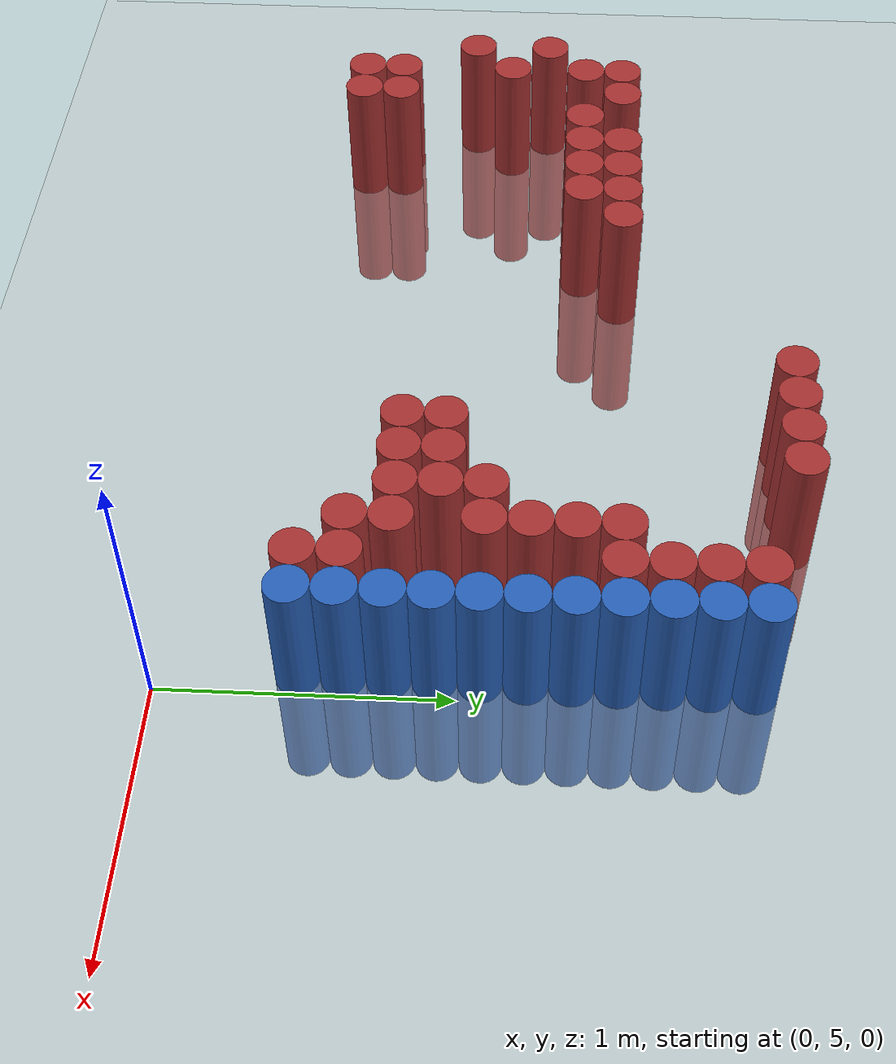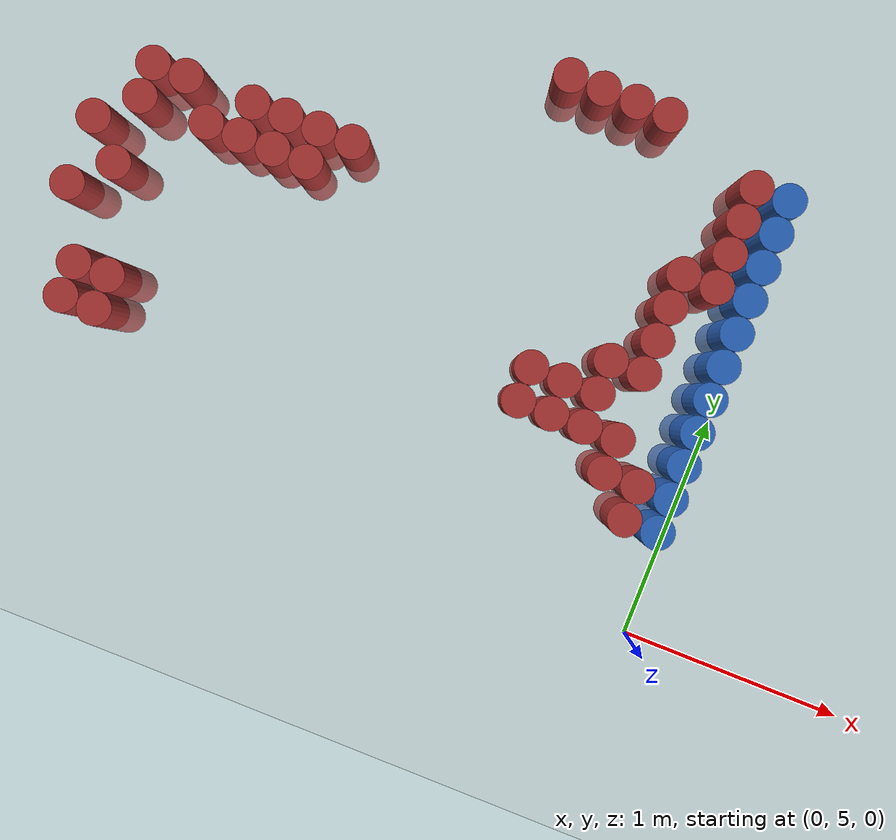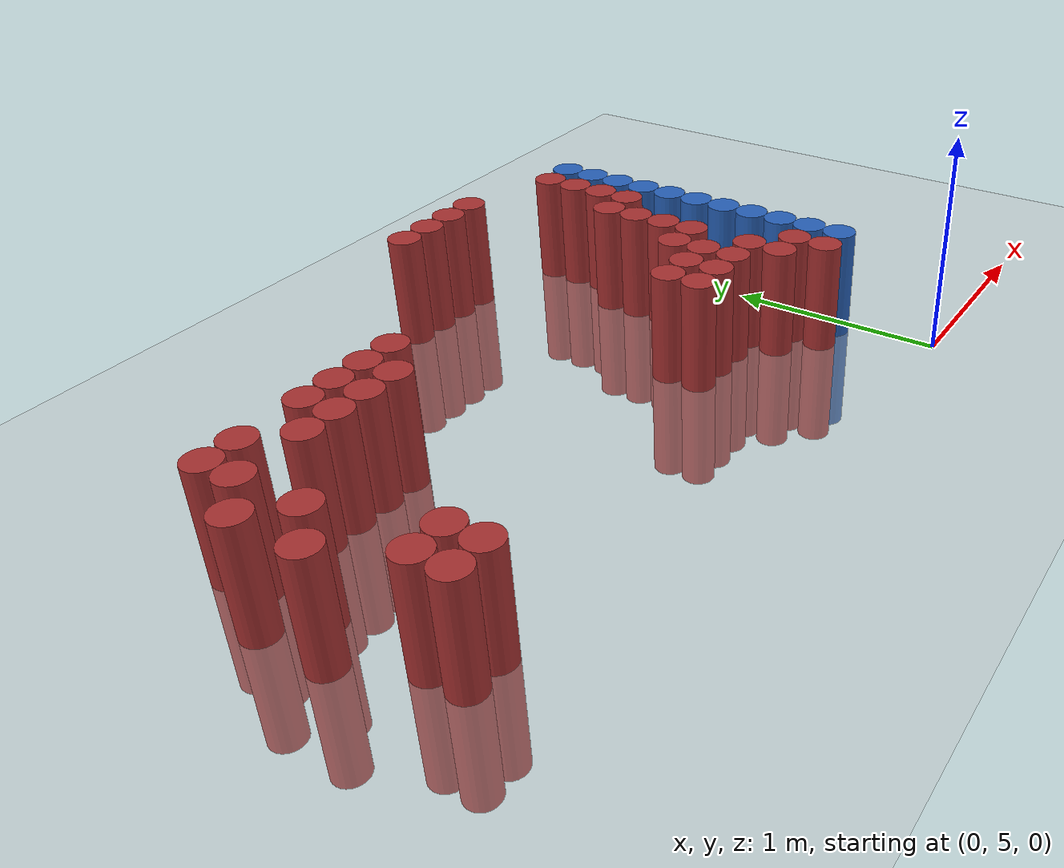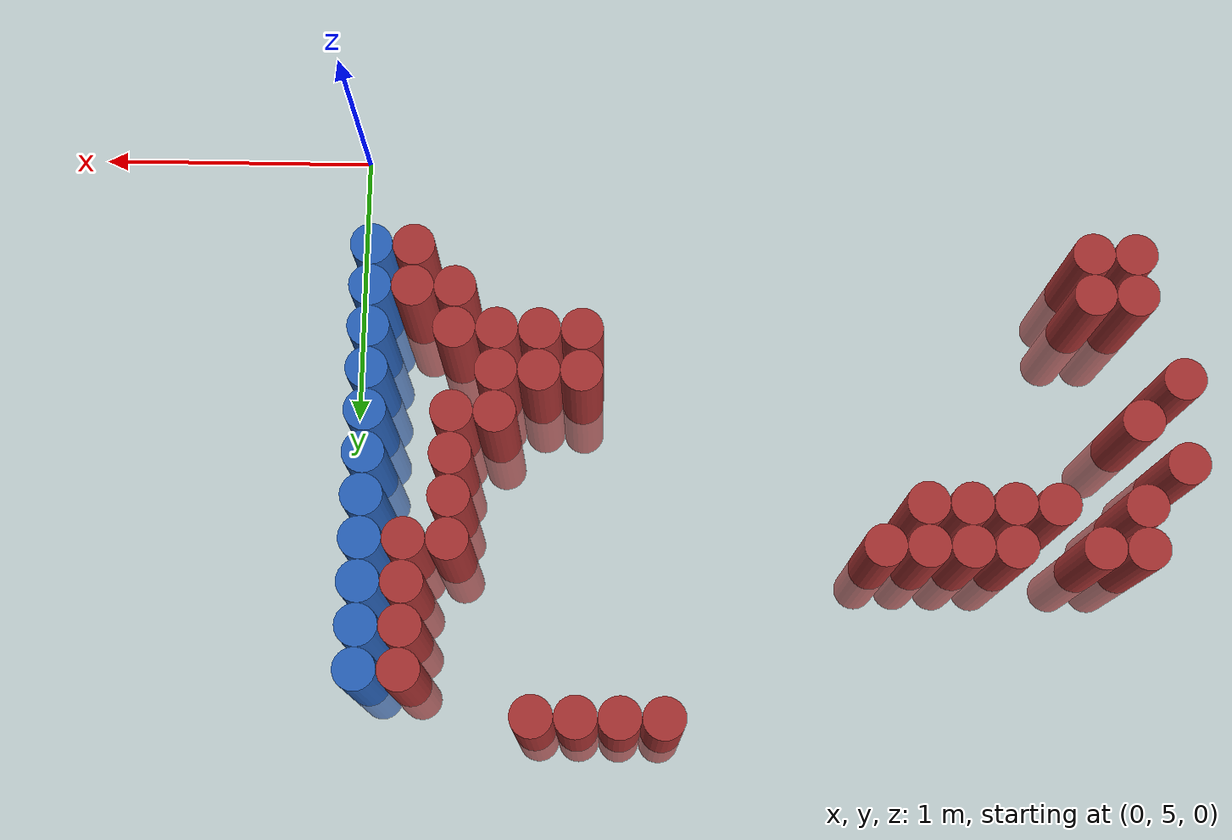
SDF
<sdf version="1.6">
 <world name="default">
  <model name="ground_plane">
   <static>1</static>
   <link name="link">
    <collision name="collision">
     <geometry><plane><normal>0 0 1</normal><size>100 100</size></plane></geometry>
     <surface><friction><ode><mu>100</mu><mu2>50</mu2></ode></friction></surface>
    </collision>
    <visual name="visual">
     <cast_shadows>0</cast_shadows>
     <geometry><plane><normal>0 0 1</normal><size>100 100</size></plane></geometry>
     <material>
      <script><uri>file://media/materials/scripts/gazebo.material</uri><name>Gazebo/Grey</name></script>
     </material>
    </visual>
   </link>
  </model>
  <model name="unit_cylinder_155">
   <static>1</static>
   <pose>-2.925000 5.925000 0.000000 0.000000 0.000000 0.000000</pose>
   <link name="link">
    <inertial>
     <mass>1</mass>
     <inertia><ixx>0.145833</ixx><ixy>0</ixy><ixz>0</ixz><iyy>0.145833</iyy><iyz>0</iyz><izz>0.125</izz></inertia>
    </inertial>
    <collision name="collision">
     <geometry><cylinder><radius>0.075000</radius><length>1</length></cylinder></geometry>
    </collision>
    <visual name="visual">
     <geometry><cylinder><radius>0.075000</radius><length>1</length></cylinder></geometry>
     <material>
      <ambient>0.648000 0.192000 0.192000 1</ambient>
      <diffuse>0.648000 0.192000 0.192000 1</diffuse>
     </material>
     <material>
      <script><name>Gazebo/Grey</name><uri>file://media/materials/scripts/gazebo.material</uri></script>
     </material>
    </visual>
   </link>
  </model>
  <model name="unit_cylinder_156">
   <static>1</static>
   <pose>-2.925000 6.225000 0.000000 0.000000 0.000000 0.000000</pose>
   <link name="link">
    <inertial>
     <mass>1</mass>
     <inertia><ixx>0.145833</ixx><ixy>0</ixy><ixz>0</ixz><iyy>0.145833</iyy><iyz>0</iyz><izz>0.125</izz></inertia>
    </inertial>
    <collision name="collision">
     <geometry><cylinder><radius>0.075000</radius><length>1</length></cylinder></geometry>
    </collision>
    <visual name="visual">
     <geometry><cylinder><radius>0.075000</radius><length>1</length></cylinder></geometry>
     <material>
      <ambient>0.648000 0.192000 0.192000 1</ambient>
      <diffuse>0.648000 0.192000 0.192000 1</diffuse>
     </material>
     <material>
      <script><name>Gazebo/Grey</name><uri>file://media/materials/scripts/gazebo.material</uri></script>
     </material>
    </visual>
   </link>
  </model>
  <model name="unit_cylinder_157">
   <static>1</static>
   <pose>-2.775000 5.475000 0.000000 0.000000 0.000000 0.000000</pose>
   <link name="link">
    <inertial>
     <mass>1</mass>
     <inertia><ixx>0.145833</ixx><ixy>0</ixy><ixz>0</ixz><iyy>0.145833</iyy><iyz>0</iyz><izz>0.125</izz></inertia>
    </inertial>
    <collision name="collision">
     <geometry><cylinder><radius>0.075000</radius><length>1</length></cylinder></geometry>
    </collision>
    <visual name="visual">
     <geometry><cylinder><radius>0.075000</radius><length>1</length></cylinder></geometry>
     <material>
      <ambient>0.648000 0.192000 0.192000 1</ambient>
      <diffuse>0.648000 0.192000 0.192000 1</diffuse>
     </material>
     <material>
      <script><name>Gazebo/Grey</name><uri>file://media/materials/scripts/gazebo.material</uri></script>
     </material>
    </visual>
   </link>
  </model>
  <model name="unit_cylinder_158">
   <static>1</static>
   <pose>-2.775000 5.625000 0.000000 0.000000 0.000000 0.000000</pose>
   <link name="link">
    <inertial>
     <mass>1</mass>
     <inertia><ixx>0.145833</ixx><ixy>0</ixy><ixz>0</ixz><iyy>0.145833</iyy><iyz>0</iyz><izz>0.125</izz></inertia>
    </inertial>
    <collision name="collision">
     <geometry><cylinder><radius>0.075000</radius><length>1</length></cylinder></geometry>
    </collision>
    <visual name="visual">
     <geometry><cylinder><radius>0.075000</radius><length>1</length></cylinder></geometry>
     <material>
      <ambient>0.648000 0.192000 0.192000 1</ambient>
      <diffuse>0.648000 0.192000 0.192000 1</diffuse>
     </material>
     <material>
      <script><name>Gazebo/Grey</name><uri>file://media/materials/scripts/gazebo.material</uri></script>
     </material>
    </visual>
   </link>
  </model>
  <model name="unit_cylinder_159">
   <static>1</static>
   <pose>-2.775000 6.075000 0.000000 0.000000 0.000000 0.000000</pose>
   <link name="link">
    <inertial>
     <mass>1</mass>
     <inertia><ixx>0.145833</ixx><ixy>0</ixy><ixz>0</ixz><iyy>0.145833</iyy><iyz>0</iyz><izz>0.125</izz></inertia>
    </inertial>
    <collision name="collision">
     <geometry><cylinder><radius>0.075000</radius><length>1</length></cylinder></geometry>
    </collision>
    <visual name="visual">
     <geometry><cylinder><radius>0.075000</radius><length>1</length></cylinder></geometry>
     <material>
      <ambient>0.648000 0.192000 0.192000 1</ambient>
      <diffuse>0.648000 0.192000 0.192000 1</diffuse>
     </material>
     <material>
      <script><name>Gazebo/Grey</name><uri>file://media/materials/scripts/gazebo.material</uri></script>
     </material>
    </visual>
   </link>
  </model>
  <model name="unit_cylinder_160">
   <static>1</static>
   <pose>-2.775000 6.375000 0.000000 0.000000 0.000000 0.000000</pose>
   <link name="link">
    <inertial>
     <mass>1</mass>
     <inertia><ixx>0.145833</ixx><ixy>0</ixy><ixz>0</ixz><iyy>0.145833</iyy><iyz>0</iyz><izz>0.125</izz></inertia>
    </inertial>
    <collision name="collision">
     <geometry><cylinder><radius>0.075000</radius><length>1</length></cylinder></geometry>
    </collision>
    <visual name="visual">
     <geometry><cylinder><radius>0.075000</radius><length>1</length></cylinder></geometry>
     <material>
      <ambient>0.648000 0.192000 0.192000 1</ambient>
      <diffuse>0.648000 0.192000 0.192000 1</diffuse>
     </material>
     <material>
      <script><name>Gazebo/Grey</name><uri>file://media/materials/scripts/gazebo.material</uri></script>
     </material>
    </visual>
   </link>
  </model>
  <model name="unit_cylinder_161">
   <static>1</static>
   <pose>-2.775000 6.525000 0.000000 0.000000 0.000000 0.000000</pose>
   <link name="link">
    <inertial>
     <mass>1</mass>
     <inertia><ixx>0.145833</ixx><ixy>0</ixy><ixz>0</ixz><iyy>0.145833</iyy><iyz>0</iyz><izz>0.125</izz></inertia>
    </inertial>
    <collision name="collision">
     <geometry><cylinder><radius>0.075000</radius><length>1</length></cylinder></geometry>
    </collision>
    <visual name="visual">
     <geometry><cylinder><radius>0.075000</radius><length>1</length></cylinder></geometry>
     <material>
      <ambient>0.648000 0.192000 0.192000 1</ambient>
      <diffuse>0.648000 0.192000 0.192000 1</diffuse>
     </material>
     <material>
      <script><name>Gazebo/Grey</name><uri>file://media/materials/scripts/gazebo.material</uri></script>
     </material>
    </visual>
   </link>
  </model>
  <model name="unit_cylinder_162">
   <static>1</static>
   <pose>-2.625000 5.475000 0.000000 0.000000 0.000000 0.000000</pose>
   <link name="link">
    <inertial>
     <mass>1</mass>
     <inertia><ixx>0.145833</ixx><ixy>0</ixy><ixz>0</ixz><iyy>0.145833</iyy><iyz>0</iyz><izz>0.125</izz></inertia>
    </inertial>
    <collision name="collision">
     <geometry><cylinder><radius>0.075000</radius><length>1</length></cylinder></geometry>
    </collision>
    <visual name="visual">
     <geometry><cylinder><radius>0.075000</radius><length>1</length></cylinder></geometry>
     <material>
      <ambient>0.648000 0.192000 0.192000 1</ambient>
      <diffuse>0.648000 0.192000 0.192000 1</diffuse>
     </material>
     <material>
      <script><name>Gazebo/Grey</name><uri>file://media/materials/scripts/gazebo.material</uri></script>
     </material>
    </visual>
   </link>
  </model>
  <model name="unit_cylinder_163">
   <static>1</static>
   <pose>-2.625000 5.625000 0.000000 0.000000 0.000000 0.000000</pose>
   <link name="link">
    <inertial>
     <mass>1</mass>
     <inertia><ixx>0.145833</ixx><ixy>0</ixy><ixz>0</ixz><iyy>0.145833</iyy><iyz>0</iyz><izz>0.125</izz></inertia>
    </inertial>
    <collision name="collision">
     <geometry><cylinder><radius>0.075000</radius><length>1</length></cylinder></geometry>
    </collision>
    <visual name="visual">
     <geometry><cylinder><radius>0.075000</radius><length>1</length></cylinder></geometry>
     <material>
      <ambient>0.648000 0.192000 0.192000 1</ambient>
      <diffuse>0.648000 0.192000 0.192000 1</diffuse>
     </material>
     <material>
      <script><name>Gazebo/Grey</name><uri>file://media/materials/scripts/gazebo.material</uri></script>
     </material>
    </visual>
   </link>
  </model>
  <model name="unit_cylinder_164">
   <static>1</static>
   <pose>-2.625000 6.525000 0.000000 0.000000 0.000000 0.000000</pose>
   <link name="link">
    <inertial>
     <mass>1</mass>
     <inertia><ixx>0.145833</ixx><ixy>0</ixy><ixz>0</ixz><iyy>0.145833</iyy><iyz>0</iyz><izz>0.125</izz></inertia>
    </inertial>
    <collision name="collision">
     <geometry><cylinder><radius>0.075000</radius><length>1</length></cylinder></geometry>
    </collision>
    <visual name="visual">
     <geometry><cylinder><radius>0.075000</radius><length>1</length></cylinder></geometry>
     <material>
      <ambient>0.648000 0.192000 0.192000 1</ambient>
      <diffuse>0.648000 0.192000 0.192000 1</diffuse>
     </material>
     <material>
      <script><name>Gazebo/Grey</name><uri>file://media/materials/scripts/gazebo.material</uri></script>
     </material>
    </visual>
   </link>
  </model>
  <model name="unit_cylinder_167">
   <static>1</static>
   <pose>-2.475000 6.375000 0.000000 0.000000 0.000000 0.000000</pose>
   <link name="link">
    <inertial>
     <mass>1</mass>
     <inertia><ixx>0.145833</ixx><ixy>0</ixy><ixz>0</ixz><iyy>0.145833</iyy><iyz>0</iyz><izz>0.125</izz></inertia>
    </inertial>
    <collision name="collision">
     <geometry><cylinder><radius>0.075000</radius><length>1</length></cylinder></geometry>
    </collision>
    <visual name="visual">
     <geometry><cylinder><radius>0.075000</radius><length>1</length></cylinder></geometry>
     <material>
      <ambient>0.648000 0.192000 0.192000 1</ambient>
      <diffuse>0.648000 0.192000 0.192000 1</diffuse>
     </material>
     <material>
      <script><name>Gazebo/Grey</name><uri>file://media/materials/scripts/gazebo.material</uri></script>
     </material>
    </visual>
   </link>
  </model>
  <model name="unit_cylinder_171">
   <static>1</static>
   <pose>-2.325000 6.375000 0.000000 0.000000 0.000000 0.000000</pose>
   <link name="link">
    <inertial>
     <mass>1</mass>
     <inertia><ixx>0.145833</ixx><ixy>0</ixy><ixz>0</ixz><iyy>0.145833</iyy><iyz>0</iyz><izz>0.125</izz></inertia>
    </inertial>
    <collision name="collision">
     <geometry><cylinder><radius>0.075000</radius><length>1</length></cylinder></geometry>
    </collision>
    <visual name="visual">
     <geometry><cylinder><radius>0.075000</radius><length>1</length></cylinder></geometry>
     <material>
      <ambient>0.648000 0.192000 0.192000 1</ambient>
      <diffuse>0.648000 0.192000 0.192000 1</diffuse>
     </material>
     <material>
      <script><name>Gazebo/Grey</name><uri>file://media/materials/scripts/gazebo.material</uri></script>
     </material>
    </visual>
   </link>
  </model>
  <model name="unit_cylinder_172">
   <static>1</static>
   <pose>-2.325000 6.525000 0.000000 0.000000 0.000000 0.000000</pose>
   <link name="link">
    <inertial>
     <mass>1</mass>
     <inertia><ixx>0.145833</ixx><ixy>0</ixy><ixz>0</ixz><iyy>0.145833</iyy><iyz>0</iyz><izz>0.125</izz></inertia>
    </inertial>
    <collision name="collision">
     <geometry><cylinder><radius>0.075000</radius><length>1</length></cylinder></geometry>
    </collision>
    <visual name="visual">
     <geometry><cylinder><radius>0.075000</radius><length>1</length></cylinder></geometry>
     <material>
      <ambient>0.648000 0.192000 0.192000 1</ambient>
      <diffuse>0.648000 0.192000 0.192000 1</diffuse>
     </material>
     <material>
      <script><name>Gazebo/Grey</name><uri>file://media/materials/scripts/gazebo.material</uri></script>
     </material>
    </visual>
   </link>
  </model>
  <model name="unit_cylinder_174">
   <static>1</static>
   <pose>-2.175000 6.375000 0.000000 0.000000 0.000000 0.000000</pose>
   <link name="link">
    <inertial>
     <mass>1</mass>
     <inertia><ixx>0.145833</ixx><ixy>0</ixy><ixz>0</ixz><iyy>0.145833</iyy><iyz>0</iyz><izz>0.125</izz></inertia>
    </inertial>
    <collision name="collision">
     <geometry><cylinder><radius>0.075000</radius><length>1</length></cylinder></geometry>
    </collision>
    <visual name="visual">
     <geometry><cylinder><radius>0.075000</radius><length>1</length></cylinder></geometry>
     <material>
      <ambient>0.648000 0.192000 0.192000 1</ambient>
      <diffuse>0.648000 0.192000 0.192000 1</diffuse>
     </material>
     <material>
      <script><name>Gazebo/Grey</name><uri>file://media/materials/scripts/gazebo.material</uri></script>
     </material>
    </visual>
   </link>
  </model>
  <model name="unit_cylinder_175">
   <static>1</static>
   <pose>-2.175000 6.525000 0.000000 0.000000 0.000000 0.000000</pose>
   <link name="link">
    <inertial>
     <mass>1</mass>
     <inertia><ixx>0.145833</ixx><ixy>0</ixy><ixz>0</ixz><iyy>0.145833</iyy><iyz>0</iyz><izz>0.125</izz></inertia>
    </inertial>
    <collision name="collision">
     <geometry><cylinder><radius>0.075000</radius><length>1</length></cylinder></geometry>
    </collision>
    <visual name="visual">
     <geometry><cylinder><radius>0.075000</radius><length>1</length></cylinder></geometry>
     <material>
      <ambient>0.648000 0.192000 0.192000 1</ambient>
      <diffuse>0.648000 0.192000 0.192000 1</diffuse>
     </material>
     <material>
      <script><name>Gazebo/Grey</name><uri>file://media/materials/scripts/gazebo.material</uri></script>
     </material>
    </visual>
   </link>
  </model>
  <model name="unit_cylinder_176">
   <static>1</static>
   <pose>-2.025000 6.375000 0.000000 0.000000 0.000000 0.000000</pose>
   <link name="link">
    <inertial>
     <mass>1</mass>
     <inertia><ixx>0.145833</ixx><ixy>0</ixy><ixz>0</ixz><iyy>0.145833</iyy><iyz>0</iyz><izz>0.125</izz></inertia>
    </inertial>
    <collision name="collision">
     <geometry><cylinder><radius>0.075000</radius><length>1</length></cylinder></geometry>
    </collision>
    <visual name="visual">
     <geometry><cylinder><radius>0.075000</radius><length>1</length></cylinder></geometry>
     <material>
      <ambient>0.648000 0.192000 0.192000 1</ambient>
      <diffuse>0.648000 0.192000 0.192000 1</diffuse>
     </material>
     <material>
      <script><name>Gazebo/Grey</name><uri>file://media/materials/scripts/gazebo.material</uri></script>
     </material>
    </visual>
   </link>
  </model>
  <model name="unit_cylinder_177">
   <static>1</static>
   <pose>-2.025000 6.525000 0.000000 0.000000 0.000000 0.000000</pose>
   <link name="link">
    <inertial>
     <mass>1</mass>
     <inertia><ixx>0.145833</ixx><ixy>0</ixy><ixz>0</ixz><iyy>0.145833</iyy><iyz>0</iyz><izz>0.125</izz></inertia>
    </inertial>
    <collision name="collision">
     <geometry><cylinder><radius>0.075000</radius><length>1</length></cylinder></geometry>
    </collision>
    <visual name="visual">
     <geometry><cylinder><radius>0.075000</radius><length>1</length></cylinder></geometry>
     <material>
      <ambient>0.648000 0.192000 0.192000 1</ambient>
      <diffuse>0.648000 0.192000 0.192000 1</diffuse>
     </material>
     <material>
      <script><name>Gazebo/Grey</name><uri>file://media/materials/scripts/gazebo.material</uri></script>
     </material>
    </visual>
   </link>
  </model>
  <model name="unit_cylinder_178">
   <static>1</static>
   <pose>-1.875000 6.525000 0.000000 0.000000 0.000000 0.000000</pose>
   <link name="link">
    <inertial>
     <mass>1</mass>
     <inertia><ixx>0.145833</ixx><ixy>0</ixy><ixz>0</ixz><iyy>0.145833</iyy><iyz>0</iyz><izz>0.125</izz></inertia>
    </inertial>
    <collision name="collision">
     <geometry><cylinder><radius>0.075000</radius><length>1</length></cylinder></geometry>
    </collision>
    <visual name="visual">
     <geometry><cylinder><radius>0.075000</radius><length>1</length></cylinder></geometry>
     <material>
      <ambient>0.648000 0.192000 0.192000 1</ambient>
      <diffuse>0.648000 0.192000 0.192000 1</diffuse>
     </material>
     <material>
      <script><name>Gazebo/Grey</name><uri>file://media/materials/scripts/gazebo.material</uri></script>
     </material>
    </visual>
   </link>
  </model>
  <model name="unit_cylinder_193">
   <static>1</static>
   <pose>-1.125000 7.125000 0.000000 0.000000 0.000000 0.000000</pose>
   <link name="link">
    <inertial>
     <mass>1</mass>
     <inertia><ixx>0.145833</ixx><ixy>0</ixy><ixz>0</ixz><iyy>0.145833</iyy><iyz>0</iyz><izz>0.125</izz></inertia>
    </inertial>
    <collision name="collision">
     <geometry><cylinder><radius>0.075000</radius><length>1</length></cylinder></geometry>
    </collision>
    <visual name="visual">
     <geometry><cylinder><radius>0.075000</radius><length>1</length></cylinder></geometry>
     <material>
      <ambient>0.648000 0.192000 0.192000 1</ambient>
      <diffuse>0.648000 0.192000 0.192000 1</diffuse>
     </material>
     <material>
      <script><name>Gazebo/Grey</name><uri>file://media/materials/scripts/gazebo.material</uri></script>
     </material>
    </visual>
   </link>
  </model>
  <model name="unit_cylinder_197">
   <static>1</static>
   <pose>-0.975000 7.125000 0.000000 0.000000 0.000000 0.000000</pose>
   <link name="link">
    <inertial>
     <mass>1</mass>
     <inertia><ixx>0.145833</ixx><ixy>0</ixy><ixz>0</ixz><iyy>0.145833</iyy><iyz>0</iyz><izz>0.125</izz></inertia>
    </inertial>
    <collision name="collision">
     <geometry><cylinder><radius>0.075000</radius><length>1</length></cylinder></geometry>
    </collision>
    <visual name="visual">
     <geometry><cylinder><radius>0.075000</radius><length>1</length></cylinder></geometry>
     <material>
      <ambient>0.648000 0.192000 0.192000 1</ambient>
      <diffuse>0.648000 0.192000 0.192000 1</diffuse>
     </material>
     <material>
      <script><name>Gazebo/Grey</name><uri>file://media/materials/scripts/gazebo.material</uri></script>
     </material>
    </visual>
   </link>
  </model>
  <model name="unit_cylinder_200">
   <static>1</static>
   <pose>-0.825000 5.775000 0.000000 0.000000 0.000000 0.000000</pose>
   <link name="link">
    <inertial>
     <mass>1</mass>
     <inertia><ixx>0.145833</ixx><ixy>0</ixy><ixz>0</ixz><iyy>0.145833</iyy><iyz>0</iyz><izz>0.125</izz></inertia>
    </inertial>
    <collision name="collision">
     <geometry><cylinder><radius>0.075000</radius><length>1</length></cylinder></geometry>
    </collision>
    <visual name="visual">
     <geometry><cylinder><radius>0.075000</radius><length>1</length></cylinder></geometry>
     <material>
      <ambient>0.648000 0.192000 0.192000 1</ambient>
      <diffuse>0.648000 0.192000 0.192000 1</diffuse>
     </material>
     <material>
      <script><name>Gazebo/Grey</name><uri>file://media/materials/scripts/gazebo.material</uri></script>
     </material>
    </visual>
   </link>
  </model>
  <model name="unit_cylinder_201">
   <static>1</static>
   <pose>-0.825000 5.925000 0.000000 0.000000 0.000000 0.000000</pose>
   <link name="link">
    <inertial>
     <mass>1</mass>
     <inertia><ixx>0.145833</ixx><ixy>0</ixy><ixz>0</ixz><iyy>0.145833</iyy><iyz>0</iyz><izz>0.125</izz></inertia>
    </inertial>
    <collision name="collision">
     <geometry><cylinder><radius>0.075000</radius><length>1</length></cylinder></geometry>
    </collision>
    <visual name="visual">
     <geometry><cylinder><radius>0.075000</radius><length>1</length></cylinder></geometry>
     <material>
      <ambient>0.648000 0.192000 0.192000 1</ambient>
      <diffuse>0.648000 0.192000 0.192000 1</diffuse>
     </material>
     <material>
      <script><name>Gazebo/Grey</name><uri>file://media/materials/scripts/gazebo.material</uri></script>
     </material>
    </visual>
   </link>
  </model>
  <model name="unit_cylinder_202">
   <static>1</static>
   <pose>-0.825000 7.125000 0.000000 0.000000 0.000000 0.000000</pose>
   <link name="link">
    <inertial>
     <mass>1</mass>
     <inertia><ixx>0.145833</ixx><ixy>0</ixy><ixz>0</ixz><iyy>0.145833</iyy><iyz>0</iyz><izz>0.125</izz></inertia>
    </inertial>
    <collision name="collision">
     <geometry><cylinder><radius>0.075000</radius><length>1</length></cylinder></geometry>
    </collision>
    <visual name="visual">
     <geometry><cylinder><radius>0.075000</radius><length>1</length></cylinder></geometry>
     <material>
      <ambient>0.648000 0.192000 0.192000 1</ambient>
      <diffuse>0.648000 0.192000 0.192000 1</diffuse>
     </material>
     <material>
      <script><name>Gazebo/Grey</name><uri>file://media/materials/scripts/gazebo.material</uri></script>
     </material>
    </visual>
   </link>
  </model>
  <model name="unit_cylinder_206">
   <static>1</static>
   <pose>-0.675000 5.775000 0.000000 0.000000 0.000000 0.000000</pose>
   <link name="link">
    <inertial>
     <mass>1</mass>
     <inertia><ixx>0.145833</ixx><ixy>0</ixy><ixz>0</ixz><iyy>0.145833</iyy><iyz>0</iyz><izz>0.125</izz></inertia>
    </inertial>
    <collision name="collision">
     <geometry><cylinder><radius>0.075000</radius><length>1</length></cylinder></geometry>
    </collision>
    <visual name="visual">
     <geometry><cylinder><radius>0.075000</radius><length>1</length></cylinder></geometry>
     <material>
      <ambient>0.648000 0.192000 0.192000 1</ambient>
      <diffuse>0.648000 0.192000 0.192000 1</diffuse>
     </material>
     <material>
      <script><name>Gazebo/Grey</name><uri>file://media/materials/scripts/gazebo.material</uri></script>
     </material>
    </visual>
   </link>
  </model>
  <model name="unit_cylinder_207">
   <static>1</static>
   <pose>-0.675000 5.925000 0.000000 0.000000 0.000000 0.000000</pose>
   <link name="link">
    <inertial>
     <mass>1</mass>
     <inertia><ixx>0.145833</ixx><ixy>0</ixy><ixz>0</ixz><iyy>0.145833</iyy><iyz>0</iyz><izz>0.125</izz></inertia>
    </inertial>
    <collision name="collision">
     <geometry><cylinder><radius>0.075000</radius><length>1</length></cylinder></geometry>
    </collision>
    <visual name="visual">
     <geometry><cylinder><radius>0.075000</radius><length>1</length></cylinder></geometry>
     <material>
      <ambient>0.648000 0.192000 0.192000 1</ambient>
      <diffuse>0.648000 0.192000 0.192000 1</diffuse>
     </material>
     <material>
      <script><name>Gazebo/Grey</name><uri>file://media/materials/scripts/gazebo.material</uri></script>
     </material>
    </visual>
   </link>
  </model>
  <model name="unit_cylinder_208">
   <static>1</static>
   <pose>-0.675000 7.125000 0.000000 0.000000 0.000000 0.000000</pose>
   <link name="link">
    <inertial>
     <mass>1</mass>
     <inertia><ixx>0.145833</ixx><ixy>0</ixy><ixz>0</ixz><iyy>0.145833</iyy><iyz>0</iyz><izz>0.125</izz></inertia>
    </inertial>
    <collision name="collision">
     <geometry><cylinder><radius>0.075000</radius><length>1</length></cylinder></geometry>
    </collision>
    <visual name="visual">
     <geometry><cylinder><radius>0.075000</radius><length>1</length></cylinder></geometry>
     <material>
      <ambient>0.648000 0.192000 0.192000 1</ambient>
      <diffuse>0.648000 0.192000 0.192000 1</diffuse>
     </material>
     <material>
      <script><name>Gazebo/Grey</name><uri>file://media/materials/scripts/gazebo.material</uri></script>
     </material>
    </visual>
   </link>
  </model>
  <model name="unit_cylinder_211">
   <static>1</static>
   <pose>-0.525000 5.775000 0.000000 0.000000 0.000000 0.000000</pose>
   <link name="link">
    <inertial>
     <mass>1</mass>
     <inertia><ixx>0.145833</ixx><ixy>0</ixy><ixz>0</ixz><iyy>0.145833</iyy><iyz>0</iyz><izz>0.125</izz></inertia>
    </inertial>
    <collision name="collision">
     <geometry><cylinder><radius>0.075000</radius><length>1</length></cylinder></geometry>
    </collision>
    <visual name="visual">
     <geometry><cylinder><radius>0.075000</radius><length>1</length></cylinder></geometry>
     <material>
      <ambient>0.648000 0.192000 0.192000 1</ambient>
      <diffuse>0.648000 0.192000 0.192000 1</diffuse>
     </material>
     <material>
      <script><name>Gazebo/Grey</name><uri>file://media/materials/scripts/gazebo.material</uri></script>
     </material>
    </visual>
   </link>
  </model>
  <model name="unit_cylinder_212">
   <static>1</static>
   <pose>-0.525000 5.925000 0.000000 0.000000 0.000000 0.000000</pose>
   <link name="link">
    <inertial>
     <mass>1</mass>
     <inertia><ixx>0.145833</ixx><ixy>0</ixy><ixz>0</ixz><iyy>0.145833</iyy><iyz>0</iyz><izz>0.125</izz></inertia>
    </inertial>
    <collision name="collision">
     <geometry><cylinder><radius>0.075000</radius><length>1</length></cylinder></geometry>
    </collision>
    <visual name="visual">
     <geometry><cylinder><radius>0.075000</radius><length>1</length></cylinder></geometry>
     <material>
      <ambient>0.648000 0.192000 0.192000 1</ambient>
      <diffuse>0.648000 0.192000 0.192000 1</diffuse>
     </material>
     <material>
      <script><name>Gazebo/Grey</name><uri>file://media/materials/scripts/gazebo.material</uri></script>
     </material>
    </visual>
   </link>
  </model>
  <model name="unit_cylinder_213">
   <static>1</static>
   <pose>-0.525000 6.075000 0.000000 0.000000 0.000000 0.000000</pose>
   <link name="link">
    <inertial>
     <mass>1</mass>
     <inertia><ixx>0.145833</ixx><ixy>0</ixy><ixz>0</ixz><iyy>0.145833</iyy><iyz>0</iyz><izz>0.125</izz></inertia>
    </inertial>
    <collision name="collision">
     <geometry><cylinder><radius>0.075000</radius><length>1</length></cylinder></geometry>
    </collision>
    <visual name="visual">
     <geometry><cylinder><radius>0.075000</radius><length>1</length></cylinder></geometry>
     <material>
      <ambient>0.648000 0.192000 0.192000 1</ambient>
      <diffuse>0.648000 0.192000 0.192000 1</diffuse>
     </material>
     <material>
      <script><name>Gazebo/Grey</name><uri>file://media/materials/scripts/gazebo.material</uri></script>
     </material>
    </visual>
   </link>
  </model>
  <model name="unit_cylinder_217">
   <static>1</static>
   <pose>-0.375000 5.625000 0.000000 0.000000 0.000000 0.000000</pose>
   <link name="link">
    <inertial>
     <mass>1</mass>
     <inertia><ixx>0.145833</ixx><ixy>0</ixy><ixz>0</ixz><iyy>0.145833</iyy><iyz>0</iyz><izz>0.125</izz></inertia>
    </inertial>
    <collision name="collision">
     <geometry><cylinder><radius>0.075000</radius><length>1</length></cylinder></geometry>
    </collision>
    <visual name="visual">
     <geometry><cylinder><radius>0.075000</radius><length>1</length></cylinder></geometry>
     <material>
      <ambient>0.648000 0.192000 0.192000 1</ambient>
      <diffuse>0.648000 0.192000 0.192000 1</diffuse>
     </material>
     <material>
      <script><name>Gazebo/Grey</name><uri>file://media/materials/scripts/gazebo.material</uri></script>
     </material>
    </visual>
   </link>
  </model>
  <model name="unit_cylinder_218">
   <static>1</static>
   <pose>-0.375000 5.775000 0.000000 0.000000 0.000000 0.000000</pose>
   <link name="link">
    <inertial>
     <mass>1</mass>
     <inertia><ixx>0.145833</ixx><ixy>0</ixy><ixz>0</ixz><iyy>0.145833</iyy><iyz>0</iyz><izz>0.125</izz></inertia>
    </inertial>
    <collision name="collision">
     <geometry><cylinder><radius>0.075000</radius><length>1</length></cylinder></geometry>
    </collision>
    <visual name="visual">
     <geometry><cylinder><radius>0.075000</radius><length>1</length></cylinder></geometry>
     <material>
      <ambient>0.648000 0.192000 0.192000 1</ambient>
      <diffuse>0.648000 0.192000 0.192000 1</diffuse>
     </material>
     <material>
      <script><name>Gazebo/Grey</name><uri>file://media/materials/scripts/gazebo.material</uri></script>
     </material>
    </visual>
   </link>
  </model>
  <model name="unit_cylinder_219">
   <static>1</static>
   <pose>-0.375000 6.075000 0.000000 0.000000 0.000000 0.000000</pose>
   <link name="link">
    <inertial>
     <mass>1</mass>
     <inertia><ixx>0.145833</ixx><ixy>0</ixy><ixz>0</ixz><iyy>0.145833</iyy><iyz>0</iyz><izz>0.125</izz></inertia>
    </inertial>
    <collision name="collision">
     <geometry><cylinder><radius>0.075000</radius><length>1</length></cylinder></geometry>
    </collision>
    <visual name="visual">
     <geometry><cylinder><radius>0.075000</radius><length>1</length></cylinder></geometry>
     <material>
      <ambient>0.648000 0.192000 0.192000 1</ambient>
      <diffuse>0.648000 0.192000 0.192000 1</diffuse>
     </material>
     <material>
      <script><name>Gazebo/Grey</name><uri>file://media/materials/scripts/gazebo.material</uri></script>
     </material>
    </visual>
   </link>
  </model>
  <model name="unit_cylinder_220">
   <static>1</static>
   <pose>-0.375000 6.225000 0.000000 0.000000 0.000000 0.000000</pose>
   <link name="link">
    <inertial>
     <mass>1</mass>
     <inertia><ixx>0.145833</ixx><ixy>0</ixy><ixz>0</ixz><iyy>0.145833</iyy><iyz>0</iyz><izz>0.125</izz></inertia>
    </inertial>
    <collision name="collision">
     <geometry><cylinder><radius>0.075000</radius><length>1</length></cylinder></geometry>
    </collision>
    <visual name="visual">
     <geometry><cylinder><radius>0.075000</radius><length>1</length></cylinder></geometry>
     <material>
      <ambient>0.648000 0.192000 0.192000 1</ambient>
      <diffuse>0.648000 0.192000 0.192000 1</diffuse>
     </material>
     <material>
      <script><name>Gazebo/Grey</name><uri>file://media/materials/scripts/gazebo.material</uri></script>
     </material>
    </visual>
   </link>
  </model>
  <model name="unit_cylinder_221">
   <static>1</static>
   <pose>-0.375000 6.375000 0.000000 0.000000 0.000000 0.000000</pose>
   <link name="link">
    <inertial>
     <mass>1</mass>
     <inertia><ixx>0.145833</ixx><ixy>0</ixy><ixz>0</ixz><iyy>0.145833</iyy><iyz>0</iyz><izz>0.125</izz></inertia>
    </inertial>
    <collision name="collision">
     <geometry><cylinder><radius>0.075000</radius><length>1</length></cylinder></geometry>
    </collision>
    <visual name="visual">
     <geometry><cylinder><radius>0.075000</radius><length>1</length></cylinder></geometry>
     <material>
      <ambient>0.648000 0.192000 0.192000 1</ambient>
      <diffuse>0.648000 0.192000 0.192000 1</diffuse>
     </material>
     <material>
      <script><name>Gazebo/Grey</name><uri>file://media/materials/scripts/gazebo.material</uri></script>
     </material>
    </visual>
   </link>
  </model>
  <model name="unit_cylinder_222">
   <static>1</static>
   <pose>-0.375000 6.525000 0.000000 0.000000 0.000000 0.000000</pose>
   <link name="link">
    <inertial>
     <mass>1</mass>
     <inertia><ixx>0.145833</ixx><ixy>0</ixy><ixz>0</ixz><iyy>0.145833</iyy><iyz>0</iyz><izz>0.125</izz></inertia>
    </inertial>
    <collision name="collision">
     <geometry><cylinder><radius>0.075000</radius><length>1</length></cylinder></geometry>
    </collision>
    <visual name="visual">
     <geometry><cylinder><radius>0.075000</radius><length>1</length></cylinder></geometry>
     <material>
      <ambient>0.648000 0.192000 0.192000 1</ambient>
      <diffuse>0.648000 0.192000 0.192000 1</diffuse>
     </material>
     <material>
      <script><name>Gazebo/Grey</name><uri>file://media/materials/scripts/gazebo.material</uri></script>
     </material>
    </visual>
   </link>
  </model>
  <model name="unit_cylinder_224">
   <static>1</static>
   <pose>-0.225000 5.475000 0.000000 0.000000 0.000000 0.000000</pose>
   <link name="link">
    <inertial>
     <mass>1</mass>
     <inertia><ixx>0.145833</ixx><ixy>0</ixy><ixz>0</ixz><iyy>0.145833</iyy><iyz>0</iyz><izz>0.125</izz></inertia>
    </inertial>
    <collision name="collision">
     <geometry><cylinder><radius>0.075000</radius><length>1</length></cylinder></geometry>
    </collision>
    <visual name="visual">
     <geometry><cylinder><radius>0.075000</radius><length>1</length></cylinder></geometry>
     <material>
      <ambient>0.648000 0.192000 0.192000 1</ambient>
      <diffuse>0.648000 0.192000 0.192000 1</diffuse>
     </material>
     <material>
      <script><name>Gazebo/Grey</name><uri>file://media/materials/scripts/gazebo.material</uri></script>
     </material>
    </visual>
   </link>
  </model>
  <model name="unit_cylinder_225">
   <static>1</static>
   <pose>-0.225000 5.625000 0.000000 0.000000 0.000000 0.000000</pose>
   <link name="link">
    <inertial>
     <mass>1</mass>
     <inertia><ixx>0.145833</ixx><ixy>0</ixy><ixz>0</ixz><iyy>0.145833</iyy><iyz>0</iyz><izz>0.125</izz></inertia>
    </inertial>
    <collision name="collision">
     <geometry><cylinder><radius>0.075000</radius><length>1</length></cylinder></geometry>
    </collision>
    <visual name="visual">
     <geometry><cylinder><radius>0.075000</radius><length>1</length></cylinder></geometry>
     <material>
      <ambient>0.648000 0.192000 0.192000 1</ambient>
      <diffuse>0.648000 0.192000 0.192000 1</diffuse>
     </material>
     <material>
      <script><name>Gazebo/Grey</name><uri>file://media/materials/scripts/gazebo.material</uri></script>
     </material>
    </visual>
   </link>
  </model>
  <model name="unit_cylinder_226">
   <static>1</static>
   <pose>-0.225000 6.525000 0.000000 0.000000 0.000000 0.000000</pose>
   <link name="link">
    <inertial>
     <mass>1</mass>
     <inertia><ixx>0.145833</ixx><ixy>0</ixy><ixz>0</ixz><iyy>0.145833</iyy><iyz>0</iyz><izz>0.125</izz></inertia>
    </inertial>
    <collision name="collision">
     <geometry><cylinder><radius>0.075000</radius><length>1</length></cylinder></geometry>
    </collision>
    <visual name="visual">
     <geometry><cylinder><radius>0.075000</radius><length>1</length></cylinder></geometry>
     <material>
      <ambient>0.648000 0.192000 0.192000 1</ambient>
      <diffuse>0.648000 0.192000 0.192000 1</diffuse>
     </material>
     <material>
      <script><name>Gazebo/Grey</name><uri>file://media/materials/scripts/gazebo.material</uri></script>
     </material>
    </visual>
   </link>
  </model>
  <model name="unit_cylinder_227">
   <static>1</static>
   <pose>-0.225000 6.675000 0.000000 0.000000 0.000000 0.000000</pose>
   <link name="link">
    <inertial>
     <mass>1</mass>
     <inertia><ixx>0.145833</ixx><ixy>0</ixy><ixz>0</ixz><iyy>0.145833</iyy><iyz>0</iyz><izz>0.125</izz></inertia>
    </inertial>
    <collision name="collision">
     <geometry><cylinder><radius>0.075000</radius><length>1</length></cylinder></geometry>
    </collision>
    <visual name="visual">
     <geometry><cylinder><radius>0.075000</radius><length>1</length></cylinder></geometry>
     <material>
      <ambient>0.648000 0.192000 0.192000 1</ambient>
      <diffuse>0.648000 0.192000 0.192000 1</diffuse>
     </material>
     <material>
      <script><name>Gazebo/Grey</name><uri>file://media/materials/scripts/gazebo.material</uri></script>
     </material>
    </visual>
   </link>
  </model>
  <model name="unit_cylinder_228">
   <static>1</static>
   <pose>-0.225000 6.825000 0.000000 0.000000 0.000000 0.000000</pose>
   <link name="link">
    <inertial>
     <mass>1</mass>
     <inertia><ixx>0.145833</ixx><ixy>0</ixy><ixz>0</ixz><iyy>0.145833</iyy><iyz>0</iyz><izz>0.125</izz></inertia>
    </inertial>
    <collision name="collision">
     <geometry><cylinder><radius>0.075000</radius><length>1</length></cylinder></geometry>
    </collision>
    <visual name="visual">
     <geometry><cylinder><radius>0.075000</radius><length>1</length></cylinder></geometry>
     <material>
      <ambient>0.648000 0.192000 0.192000 1</ambient>
      <diffuse>0.648000 0.192000 0.192000 1</diffuse>
     </material>
     <material>
      <script><name>Gazebo/Grey</name><uri>file://media/materials/scripts/gazebo.material</uri></script>
     </material>
    </visual>
   </link>
  </model>
  <model name="unit_cylinder_229">
   <static>1</static>
   <pose>-0.225000 6.975000 0.000000 0.000000 0.000000 0.000000</pose>
   <link name="link">
    <inertial>
     <mass>1</mass>
     <inertia><ixx>0.145833</ixx><ixy>0</ixy><ixz>0</ixz><iyy>0.145833</iyy><iyz>0</iyz><izz>0.125</izz></inertia>
    </inertial>
    <collision name="collision">
     <geometry><cylinder><radius>0.075000</radius><length>1</length></cylinder></geometry>
    </collision>
    <visual name="visual">
     <geometry><cylinder><radius>0.075000</radius><length>1</length></cylinder></geometry>
     <material>
      <ambient>0.648000 0.192000 0.192000 1</ambient>
      <diffuse>0.648000 0.192000 0.192000 1</diffuse>
     </material>
     <material>
      <script><name>Gazebo/Grey</name><uri>file://media/materials/scripts/gazebo.material</uri></script>
     </material>
    </visual>
   </link>
  </model>
  <model name="unit_cylinder_234">
   <static>1</static>
   <pose>-0.075000 5.475000 0.000000 0.000000 0.000000 0.000000</pose>
   <link name="link">
    <inertial>
     <mass>1</mass>
     <inertia><ixx>0.145833</ixx><ixy>0</ixy><ixz>0</ixz><iyy>0.145833</iyy><iyz>0</iyz><izz>0.125</izz></inertia>
    </inertial>
    <collision name="collision">
     <geometry><cylinder><radius>0.075000</radius><length>1</length></cylinder></geometry>
    </collision>
    <visual name="visual">
     <geometry><cylinder><radius>0.075000</radius><length>1</length></cylinder></geometry>
     <material>
      <ambient>0.152000 0.379000 0.720000 1</ambient>
      <diffuse>0.152000 0.379000 0.720000 1</diffuse>
     </material>
     <material>
      <script><name>Gazebo/Grey</name><uri>file://media/materials/scripts/gazebo.material</uri></script>
     </material>
    </visual>
   </link>
  </model>
  <model name="unit_cylinder_235">
   <static>1</static>
   <pose>-0.075000 5.625000 0.000000 0.000000 0.000000 0.000000</pose>
   <link name="link">
    <inertial>
     <mass>1</mass>
     <inertia><ixx>0.145833</ixx><ixy>0</ixy><ixz>0</ixz><iyy>0.145833</iyy><iyz>0</iyz><izz>0.125</izz></inertia>
    </inertial>
    <collision name="collision">
     <geometry><cylinder><radius>0.075000</radius><length>1</length></cylinder></geometry>
    </collision>
    <visual name="visual">
     <geometry><cylinder><radius>0.075000</radius><length>1</length></cylinder></geometry>
     <material>
      <ambient>0.152000 0.379000 0.720000 1</ambient>
      <diffuse>0.152000 0.379000 0.720000 1</diffuse>
     </material>
     <material>
      <script><name>Gazebo/Grey</name><uri>file://media/materials/scripts/gazebo.material</uri></script>
     </material>
    </visual>
   </link>
  </model>
  <model name="unit_cylinder_236">
   <static>1</static>
   <pose>-0.075000 5.775000 0.000000 0.000000 0.000000 0.000000</pose>
   <link name="link">
    <inertial>
     <mass>1</mass>
     <inertia><ixx>0.145833</ixx><ixy>0</ixy><ixz>0</ixz><iyy>0.145833</iyy><iyz>0</iyz><izz>0.125</izz></inertia>
    </inertial>
    <collision name="collision">
     <geometry><cylinder><radius>0.075000</radius><length>1</length></cylinder></geometry>
    </collision>
    <visual name="visual">
     <geometry><cylinder><radius>0.075000</radius><length>1</length></cylinder></geometry>
     <material>
      <ambient>0.152000 0.379000 0.720000 1</ambient>
      <diffuse>0.152000 0.379000 0.720000 1</diffuse>
     </material>
     <material>
      <script><name>Gazebo/Grey</name><uri>file://media/materials/scripts/gazebo.material</uri></script>
     </material>
    </visual>
   </link>
  </model>
  <model name="unit_cylinder_237">
   <static>1</static>
   <pose>-0.075000 5.925000 0.000000 0.000000 0.000000 0.000000</pose>
   <link name="link">
    <inertial>
     <mass>1</mass>
     <inertia><ixx>0.145833</ixx><ixy>0</ixy><ixz>0</ixz><iyy>0.145833</iyy><iyz>0</iyz><izz>0.125</izz></inertia>
    </inertial>
    <collision name="collision">
     <geometry><cylinder><radius>0.075000</radius><length>1</length></cylinder></geometry>
    </collision>
    <visual name="visual">
     <geometry><cylinder><radius>0.075000</radius><length>1</length></cylinder></geometry>
     <material>
      <ambient>0.152000 0.379000 0.720000 1</ambient>
      <diffuse>0.152000 0.379000 0.720000 1</diffuse>
     </material>
     <material>
      <script><name>Gazebo/Grey</name><uri>file://media/materials/scripts/gazebo.material</uri></script>
     </material>
    </visual>
   </link>
  </model>
  <model name="unit_cylinder_238">
   <static>1</static>
   <pose>-0.075000 6.075000 0.000000 0.000000 0.000000 0.000000</pose>
   <link name="link">
    <inertial>
     <mass>1</mass>
     <inertia><ixx>0.145833</ixx><ixy>0</ixy><ixz>0</ixz><iyy>0.145833</iyy><iyz>0</iyz><izz>0.125</izz></inertia>
    </inertial>
    <collision name="collision">
     <geometry><cylinder><radius>0.075000</radius><length>1</length></cylinder></geometry>
    </collision>
    <visual name="visual">
     <geometry><cylinder><radius>0.075000</radius><length>1</length></cylinder></geometry>
     <material>
      <ambient>0.152000 0.379000 0.720000 1</ambient>
      <diffuse>0.152000 0.379000 0.720000 1</diffuse>
     </material>
     <material>
      <script><name>Gazebo/Grey</name><uri>file://media/materials/scripts/gazebo.material</uri></script>
     </material>
    </visual>
   </link>
  </model>
  <model name="unit_cylinder_239">
   <static>1</static>
   <pose>-0.075000 6.225000 0.000000 0.000000 0.000000 0.000000</pose>
   <link name="link">
    <inertial>
     <mass>1</mass>
     <inertia><ixx>0.145833</ixx><ixy>0</ixy><ixz>0</ixz><iyy>0.145833</iyy><iyz>0</iyz><izz>0.125</izz></inertia>
    </inertial>
    <collision name="collision">
     <geometry><cylinder><radius>0.075000</radius><length>1</length></cylinder></geometry>
    </collision>
    <visual name="visual">
     <geometry><cylinder><radius>0.075000</radius><length>1</length></cylinder></geometry>
     <material>
      <ambient>0.152000 0.379000 0.720000 1</ambient>
      <diffuse>0.152000 0.379000 0.720000 1</diffuse>
     </material>
     <material>
      <script><name>Gazebo/Grey</name><uri>file://media/materials/scripts/gazebo.material</uri></script>
     </material>
    </visual>
   </link>
  </model>
  <model name="unit_cylinder_240">
   <static>1</static>
   <pose>-0.075000 6.375000 0.000000 0.000000 0.000000 0.000000</pose>
   <link name="link">
    <inertial>
     <mass>1</mass>
     <inertia><ixx>0.145833</ixx><ixy>0</ixy><ixz>0</ixz><iyy>0.145833</iyy><iyz>0</iyz><izz>0.125</izz></inertia>
    </inertial>
    <collision name="collision">
     <geometry><cylinder><radius>0.075000</radius><length>1</length></cylinder></geometry>
    </collision>
    <visual name="visual">
     <geometry><cylinder><radius>0.075000</radius><length>1</length></cylinder></geometry>
     <material>
      <ambient>0.152000 0.379000 0.720000 1</ambient>
      <diffuse>0.152000 0.379000 0.720000 1</diffuse>
     </material>
     <material>
      <script><name>Gazebo/Grey</name><uri>file://media/materials/scripts/gazebo.material</uri></script>
     </material>
    </visual>
   </link>
  </model>
  <model name="unit_cylinder_241">
   <static>1</static>
   <pose>-0.075000 6.525000 0.000000 0.000000 0.000000 0.000000</pose>
   <link name="link">
    <inertial>
     <mass>1</mass>
     <inertia><ixx>0.145833</ixx><ixy>0</ixy><ixz>0</ixz><iyy>0.145833</iyy><iyz>0</iyz><izz>0.125</izz></inertia>
    </inertial>
    <collision name="collision">
     <geometry><cylinder><radius>0.075000</radius><length>1</length></cylinder></geometry>
    </collision>
    <visual name="visual">
     <geometry><cylinder><radius>0.075000</radius><length>1</length></cylinder></geometry>
     <material>
      <ambient>0.152000 0.379000 0.720000 1</ambient>
      <diffuse>0.152000 0.379000 0.720000 1</diffuse>
     </material>
     <material>
      <script><name>Gazebo/Grey</name><uri>file://media/materials/scripts/gazebo.material</uri></script>
     </material>
    </visual>
   </link>
  </model>
  <model name="unit_cylinder_242">
   <static>1</static>
   <pose>-0.075000 6.675000 0.000000 0.000000 0.000000 0.000000</pose>
   <link name="link">
    <inertial>
     <mass>1</mass>
     <inertia><ixx>0.145833</ixx><ixy>0</ixy><ixz>0</ixz><iyy>0.145833</iyy><iyz>0</iyz><izz>0.125</izz></inertia>
    </inertial>
    <collision name="collision">
     <geometry><cylinder><radius>0.075000</radius><length>1</length></cylinder></geometry>
    </collision>
    <visual name="visual">
     <geometry><cylinder><radius>0.075000</radius><length>1</length></cylinder></geometry>
     <material>
      <ambient>0.152000 0.379000 0.720000 1</ambient>
      <diffuse>0.152000 0.379000 0.720000 1</diffuse>
     </material>
     <material>
      <script><name>Gazebo/Grey</name><uri>file://media/materials/scripts/gazebo.material</uri></script>
     </material>
    </visual>
   </link>
  </model>
  <model name="unit_cylinder_243">
   <static>1</static>
   <pose>-0.075000 6.825000 0.000000 0.000000 0.000000 0.000000</pose>
   <link name="link">
    <inertial>
     <mass>1</mass>
     <inertia><ixx>0.145833</ixx><ixy>0</ixy><ixz>0</ixz><iyy>0.145833</iyy><iyz>0</iyz><izz>0.125</izz></inertia>
    </inertial>
    <collision name="collision">
     <geometry><cylinder><radius>0.075000</radius><length>1</length></cylinder></geometry>
    </collision>
    <visual name="visual">
     <geometry><cylinder><radius>0.075000</radius><length>1</length></cylinder></geometry>
     <material>
      <ambient>0.152000 0.379000 0.720000 1</ambient>
      <diffuse>0.152000 0.379000 0.720000 1</diffuse>
     </material>
     <material>
      <script><name>Gazebo/Grey</name><uri>file://media/materials/scripts/gazebo.material</uri></script>
     </material>
    </visual>
   </link>
  </model>
  <model name="unit_cylinder_244">
   <static>1</static>
   <pose>-0.075000 6.975000 0.000000 0.000000 0.000000 0.000000</pose>
   <link name="link">
    <inertial>
     <mass>1</mass>
     <inertia><ixx>0.145833</ixx><ixy>0</ixy><ixz>0</ixz><iyy>0.145833</iyy><iyz>0</iyz><izz>0.125</izz></inertia>
    </inertial>
    <collision name="collision">
     <geometry><cylinder><radius>0.075000</radius><length>1</length></cylinder></geometry>
    </collision>
    <visual name="visual">
     <geometry><cylinder><radius>0.075000</radius><length>1</length></cylinder></geometry>
     <material>
      <ambient>0.152000 0.379000 0.720000 1</ambient>
      <diffuse>0.152000 0.379000 0.720000 1</diffuse>
     </material>
     <material>
      <script><name>Gazebo/Grey</name><uri>file://media/materials/scripts/gazebo.material</uri></script>
     </material>
    </visual>
   </link>
  </model>
 </world>
</sdf>
